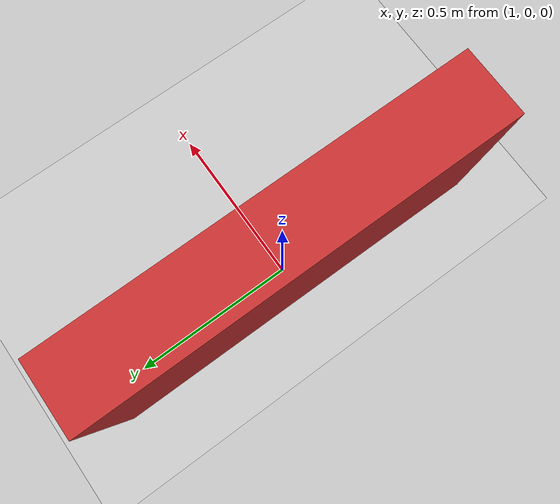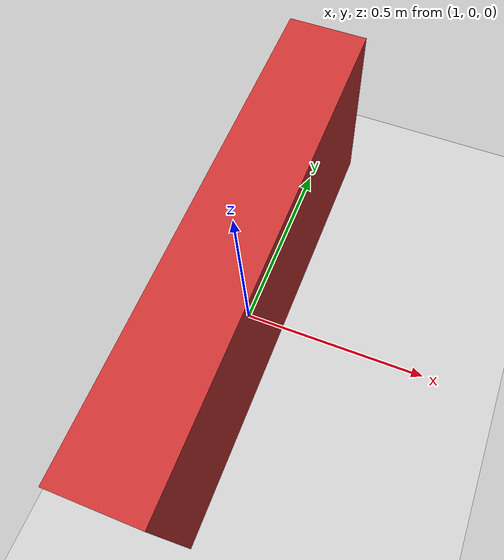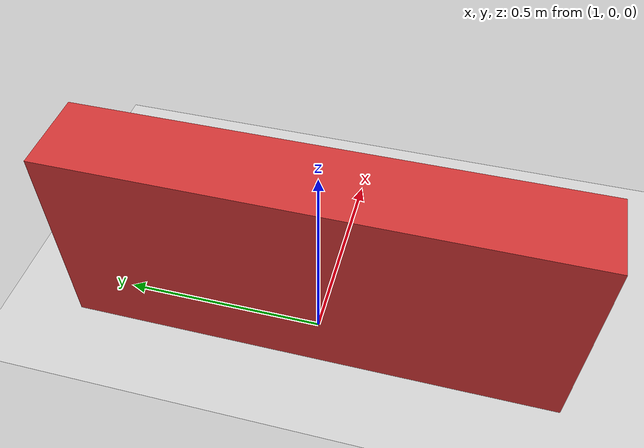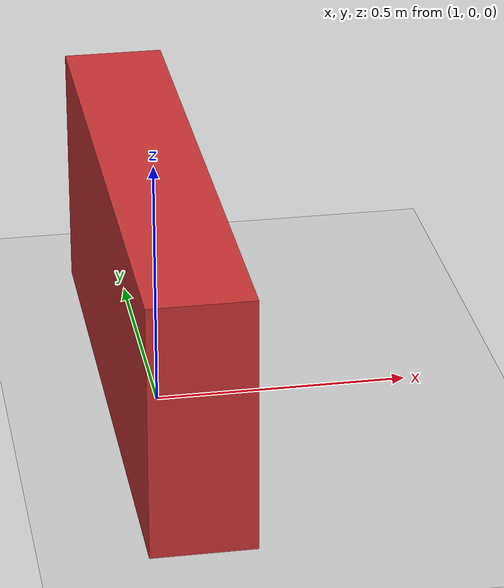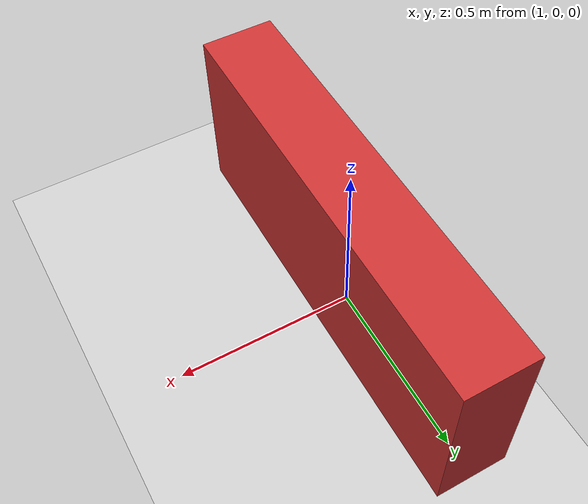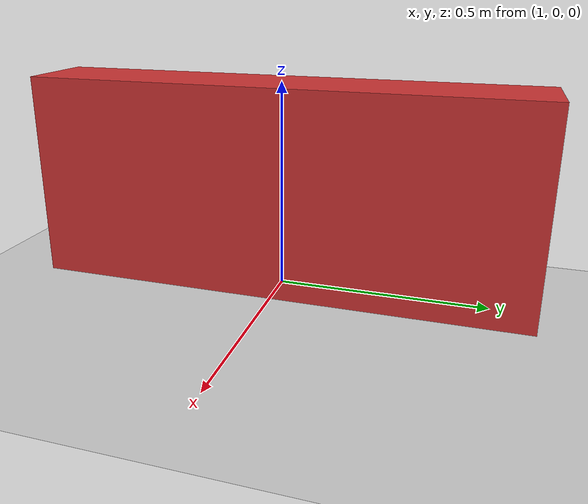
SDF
<?xml version="1.0"?>
<sdf version="1.6">
  <world name="default">
    <include><uri>model://ground_plane</uri></include>
    <include><uri>model://sun</uri></include>
    <physics type="ode">
      <max_step_size>0.001</max_step_size>
      <real_time_update_rate>1000</real_time_update_rate>
    </physics>
    <model name="b1_fixed_obstacle">
      <static>true</static>
      <pose>1 0 0.25 0 0 0</pose>
      <link name="wall">
        <collision name="collision"><geometry><box><size>0.2 1.2 0.5</size></box></geometry></collision>
        <visual name="visual">
          <geometry><box><size>0.2 1.2 0.5</size></box></geometry>
          <material><ambient>0.8 0.2 0.2 1</ambient><diffuse>0.8 0.2 0.2 1</diffuse></material>
        </visual>
      </link>
    </model>
  </world>
</sdf>
